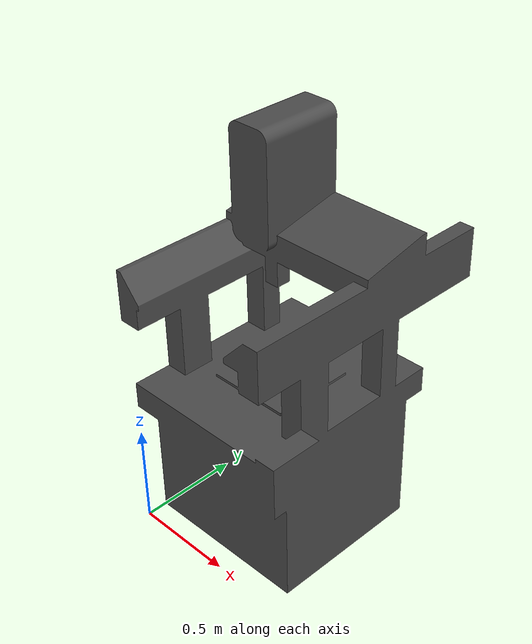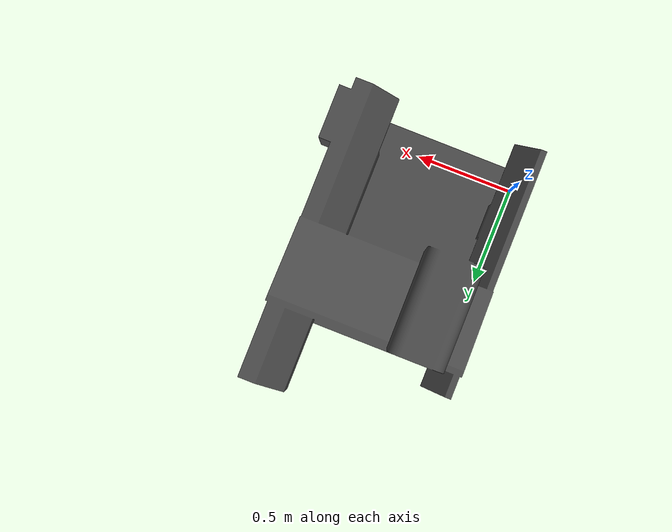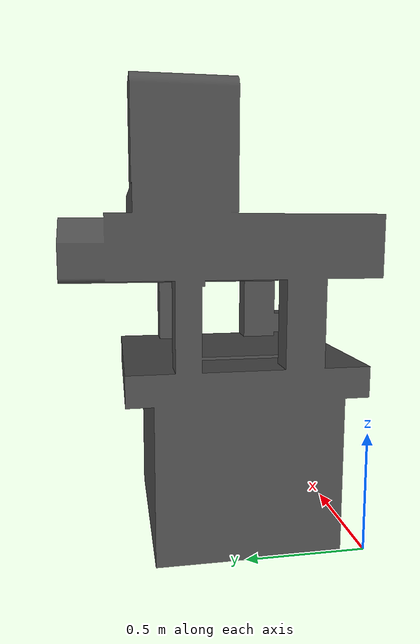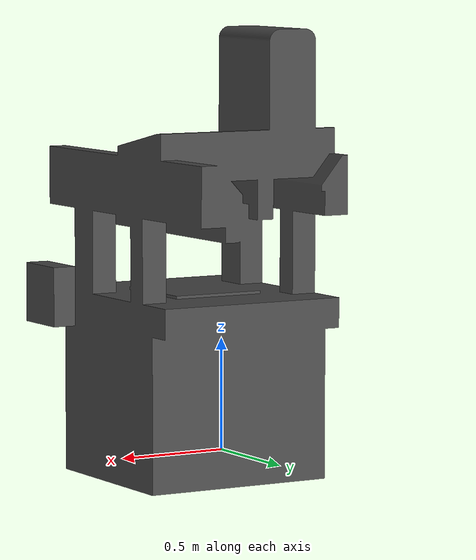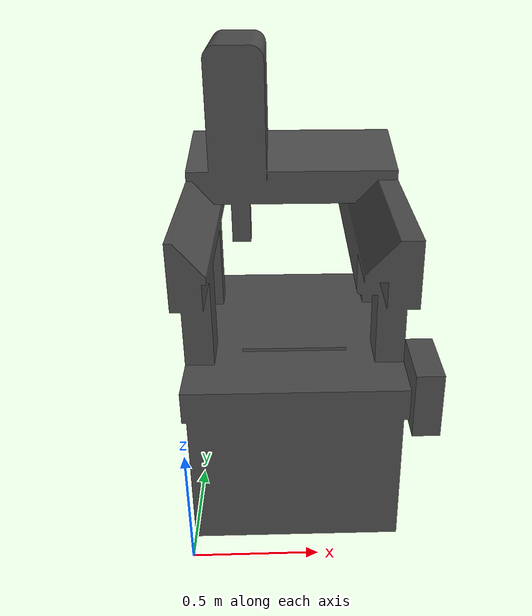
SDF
<?xml version='1.0'?>
<sdf version='1.6'>
  <model name='CMM'>
    <static>1</static>
    <link name='link'>
      <pose>0 0 0 0 -0 0</pose>
      <visual name='visual'>
        <geometry>
          <mesh>
            <uri>CMM_Model.stl</uri>
            <!-- Inches to Meters -->
            <scale>0.0254 0.0254 0.0254</scale>
          </mesh>
        </geometry>
        <material>
          <ambient>0.4 0.4 0.4 1</ambient>
          <diffuse>0.3 0.3 0.3 1</diffuse>
          <specular>0.01 0.01 0.01 1</specular>
          <emissive>0 0 0 1</emissive>
        </material>
      </visual>
      <collision name='collision'>
        <geometry>
          <mesh>
            <uri>CMM_Model.stl</uri>
            <scale>0.0254 0.0254 0.0254</scale>
          </mesh>
        </geometry>
      </collision>
    </link>
  </model>
</sdf>
